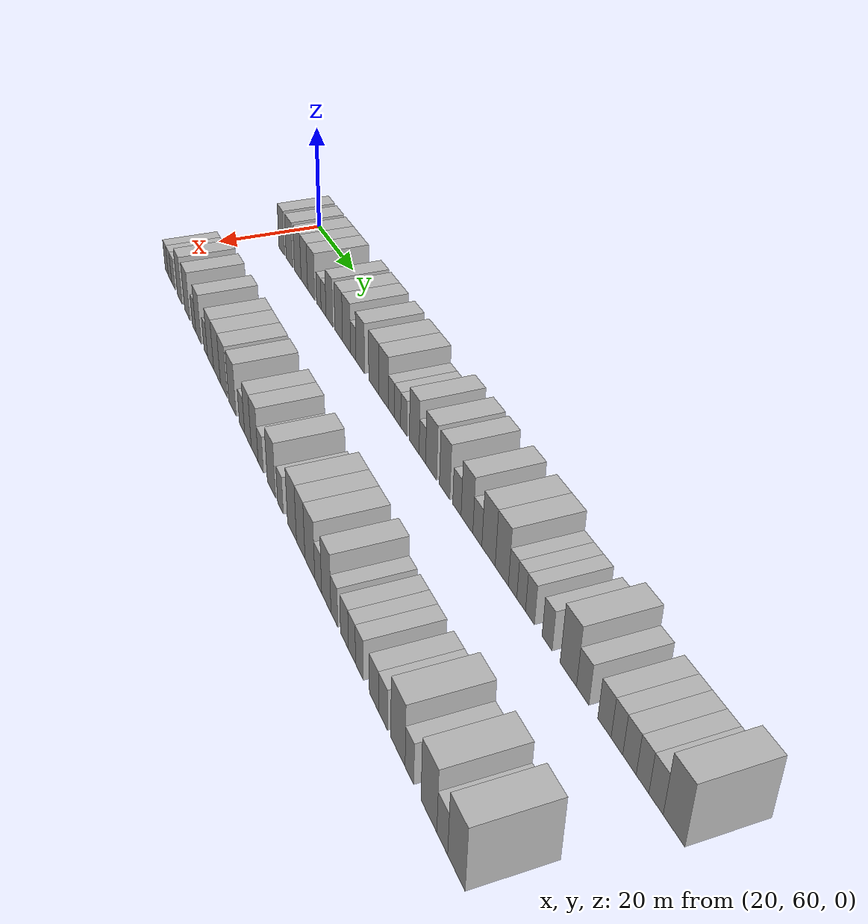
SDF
<sdf version="1.6">
 <world name="default">
  <model name="building_71">
   <static>1</static>
   <pose>25.0000 68.1362 0 0.000000 0.000000 0.000000</pose>
   <link name="link">
    <pose>0 0 4.50 0 0 0</pose>
    <collision name="collision"><geometry><box><size>10.0000 3.7482 9.0000</size></box></geometry></collision>
    <visual name="visual">
     <cast_shadows>0</cast_shadows>
     <geometry><box><size>10.0000 3.7482 9.0000</size></box></geometry>
     <material>
      <script>
       <uri>model://HANNAS_wall/materials/scripts</uri>
       <uri>model://HANNAS_wall/materials/textures</uri>
       <name>vrc/HANNAS_wall</name>
      </script>
     </material>
    </visual>
   </link>
  </model>
  <model name="building_72">
   <static>1</static>
   <pose>25.0000 73.1373 0 0.000000 0.000000 0.000000</pose>
   <link name="link">
    <pose>0 0 4.50 0 0 0</pose>
    <collision name="collision"><geometry><box><size>10.0000 4.2538 9.0000</size></box></geometry></collision>
    <visual name="visual">
     <cast_shadows>0</cast_shadows>
     <geometry><box><size>10.0000 4.2538 9.0000</size></box></geometry>
     <material>
      <script>
       <uri>model://HANNAS_wall/materials/scripts</uri>
       <uri>model://HANNAS_wall/materials/textures</uri>
       <name>vrc/HANNAS_wall</name>
      </script>
     </material>
    </visual>
   </link>
  </model>
  <model name="building_73">
   <static>1</static>
   <pose>25.0000 78.3566 0 0.000000 0.000000 0.000000</pose>
   <link name="link">
    <pose>0 0 4.50 0 0 0</pose>
    <collision name="collision"><geometry><box><size>10.0000 4.1849 9.0000</size></box></geometry></collision>
    <visual name="visual">
     <cast_shadows>0</cast_shadows>
     <geometry><box><size>10.0000 4.1849 9.0000</size></box></geometry>
     <material>
      <script>
       <uri>model://HANNAS_wall/materials/scripts</uri>
       <uri>model://HANNAS_wall/materials/textures</uri>
       <name>vrc/HANNAS_wall</name>
      </script>
     </material>
    </visual>
   </link>
  </model>
  <model name="building_74">
   <static>1</static>
   <pose>25.0000 82.3882 0 0.000000 0.000000 0.000000</pose>
   <link name="link">
    <pose>0 0 4.50 0 0 0</pose>
    <collision name="collision"><geometry><box><size>10.0000 3.8783 9.0000</size></box></geometry></collision>
    <visual name="visual">
     <cast_shadows>0</cast_shadows>
     <geometry><box><size>10.0000 3.8783 9.0000</size></box></geometry>
     <material>
      <script>
       <uri>model://HANNAS_wall/materials/scripts</uri>
       <uri>model://HANNAS_wall/materials/textures</uri>
       <name>vrc/HANNAS_wall</name>
      </script>
     </material>
    </visual>
   </link>
  </model>
  <model name="building_75">
   <static>1</static>
   <pose>25.0000 86.4307 0 0.000000 0.000000 0.000000</pose>
   <link name="link">
    <pose>0 0 4.50 0 0 0</pose>
    <collision name="collision"><geometry><box><size>10.0000 4.2067 9.0000</size></box></geometry></collision>
    <visual name="visual">
     <cast_shadows>0</cast_shadows>
     <geometry><box><size>10.0000 4.2067 9.0000</size></box></geometry>
     <material>
      <script>
       <uri>model://HANNAS_wall/materials/scripts</uri>
       <uri>model://HANNAS_wall/materials/textures</uri>
       <name>vrc/HANNAS_wall</name>
      </script>
     </material>
    </visual>
   </link>
  </model>
  <model name="building_76">
   <static>1</static>
   <pose>25.0000 90.8180 0 0.000000 0.000000 0.000000</pose>
   <link name="link">
    <pose>0 0 3.00 0 0 0</pose>
    <collision name="collision"><geometry><box><size>10.0000 2.5678 6.0000</size></box></geometry></collision>
    <visual name="visual">
     <cast_shadows>0</cast_shadows>
     <geometry><box><size>10.0000 2.5678 6.0000</size></box></geometry>
     <material>
      <script>
       <uri>model://HANNAS_wall/materials/scripts</uri>
       <uri>model://HANNAS_wall/materials/textures</uri>
       <name>vrc/HANNAS_wall</name>
      </script>
     </material>
    </visual>
   </link>
  </model>
  <model name="building_77">
   <static>1</static>
   <pose>25.0000 93.4687 0 0.000000 0.000000 0.000000</pose>
   <link name="link">
    <pose>0 0 3.00 0 0 0</pose>
    <collision name="collision"><geometry><box><size>10.0000 2.7337 6.0000</size></box></geometry></collision>
    <visual name="visual">
     <cast_shadows>0</cast_shadows>
     <geometry><box><size>10.0000 2.7337 6.0000</size></box></geometry>
     <material>
      <script>
       <uri>model://HANNAS_wall/materials/scripts</uri>
       <uri>model://HANNAS_wall/materials/textures</uri>
       <name>vrc/HANNAS_wall</name>
      </script>
     </material>
    </visual>
   </link>
  </model>
  <model name="building_78">
   <static>1</static>
   <pose>25.0000 96.7047 0 0.000000 0.000000 0.000000</pose>
   <link name="link">
    <pose>0 0 4.50 0 0 0</pose>
    <collision name="collision"><geometry><box><size>10.0000 3.7382 9.0000</size></box></geometry></collision>
    <visual name="visual">
     <cast_shadows>0</cast_shadows>
     <geometry><box><size>10.0000 3.7382 9.0000</size></box></geometry>
     <material>
      <script>
       <uri>model://HANNAS_wall/materials/scripts</uri>
       <uri>model://HANNAS_wall/materials/textures</uri>
       <name>vrc/HANNAS_wall</name>
      </script>
     </material>
    </visual>
   </link>
  </model>
  <model name="building_79">
   <static>1</static>
   <pose>25.0000 101.5788 0 0.000000 0.000000 0.000000</pose>
   <link name="link">
    <pose>0 0 4.50 0 0 0</pose>
    <collision name="collision"><geometry><box><size>10.0000 4.0099 9.0000</size></box></geometry></collision>
    <visual name="visual">
     <cast_shadows>0</cast_shadows>
     <geometry><box><size>10.0000 4.0099 9.0000</size></box></geometry>
     <material>
      <script>
       <uri>model://HANNAS_wall/materials/scripts</uri>
       <uri>model://HANNAS_wall/materials/textures</uri>
       <name>vrc/HANNAS_wall</name>
      </script>
     </material>
    </visual>
   </link>
  </model>
  <model name="building_80">
   <static>1</static>
   <pose>25.0000 105.6009 0 0.000000 0.000000 0.000000</pose>
   <link name="link">
    <pose>0 0 4.50 0 0 0</pose>
    <collision name="collision"><geometry><box><size>10.0000 4.0342 9.0000</size></box></geometry></collision>
    <visual name="visual">
     <cast_shadows>0</cast_shadows>
     <geometry><box><size>10.0000 4.0342 9.0000</size></box></geometry>
     <material>
      <script>
       <uri>model://HANNAS_wall/materials/scripts</uri>
       <uri>model://HANNAS_wall/materials/textures</uri>
       <name>vrc/HANNAS_wall</name>
      </script>
     </material>
    </visual>
   </link>
  </model>
  <model name="building_81">
   <static>1</static>
   <pose>25.0000 108.9214 0 0.000000 0.000000 0.000000</pose>
   <link name="link">
    <pose>0 0 3.00 0 0 0</pose>
    <collision name="collision"><geometry><box><size>10.0000 2.6068 6.0000</size></box></geometry></collision>
    <visual name="visual">
     <cast_shadows>0</cast_shadows>
     <geometry><box><size>10.0000 2.6068 6.0000</size></box></geometry>
     <material>
      <script>
       <uri>model://HANNAS_wall/materials/scripts</uri>
       <uri>model://HANNAS_wall/materials/textures</uri>
       <name>vrc/HANNAS_wall</name>
      </script>
     </material>
    </visual>
   </link>
  </model>
  <model name="building_82">
   <static>1</static>
   <pose>25.0000 112.3044 0 0.000000 0.000000 0.000000</pose>
   <link name="link">
    <pose>0 0 4.50 0 0 0</pose>
    <collision name="collision"><geometry><box><size>10.0000 4.1591 9.0000</size></box></geometry></collision>
    <visual name="visual">
     <cast_shadows>0</cast_shadows>
     <geometry><box><size>10.0000 4.1591 9.0000</size></box></geometry>
     <material>
      <script>
       <uri>model://HANNAS_wall/materials/scripts</uri>
       <uri>model://HANNAS_wall/materials/textures</uri>
       <name>vrc/HANNAS_wall</name>
      </script>
     </material>
    </visual>
   </link>
  </model>
  <model name="building_83">
   <static>1</static>
   <pose>25.0000 118.6127 0 0.000000 0.000000 0.000000</pose>
   <link name="link">
    <pose>0 0 4.50 0 0 0</pose>
    <collision name="collision"><geometry><box><size>10.0000 4.4575 9.0000</size></box></geometry></collision>
    <visual name="visual">
     <cast_shadows>0</cast_shadows>
     <geometry><box><size>10.0000 4.4575 9.0000</size></box></geometry>
     <material>
      <script>
       <uri>model://HANNAS_wall/materials/scripts</uri>
       <uri>model://HANNAS_wall/materials/textures</uri>
       <name>vrc/HANNAS_wall</name>
      </script>
     </material>
    </visual>
   </link>
  </model>
  <model name="building_84">
   <static>1</static>
   <pose>25.0000 122.9503 0 0.000000 0.000000 0.000000</pose>
   <link name="link">
    <pose>0 0 4.50 0 0 0</pose>
    <collision name="collision"><geometry><box><size>10.0000 4.2178 9.0000</size></box></geometry></collision>
    <visual name="visual">
     <cast_shadows>0</cast_shadows>
     <geometry><box><size>10.0000 4.2178 9.0000</size></box></geometry>
     <material>
      <script>
       <uri>model://HANNAS_wall/materials/scripts</uri>
       <uri>model://HANNAS_wall/materials/textures</uri>
       <name>vrc/HANNAS_wall</name>
      </script>
     </material>
    </visual>
   </link>
  </model>
  <model name="building_85">
   <static>1</static>
   <pose>25.0000 126.3173 0 0.000000 0.000000 0.000000</pose>
   <link name="link">
    <pose>0 0 3.00 0 0 0</pose>
    <collision name="collision"><geometry><box><size>10.0000 2.5161 6.0000</size></box></geometry></collision>
    <visual name="visual">
     <cast_shadows>0</cast_shadows>
     <geometry><box><size>10.0000 2.5161 6.0000</size></box></geometry>
     <material>
      <script>
       <uri>model://HANNAS_wall/materials/scripts</uri>
       <uri>model://HANNAS_wall/materials/textures</uri>
       <name>vrc/HANNAS_wall</name>
      </script>
     </material>
    </visual>
   </link>
  </model>
  <model name="building_86">
   <static>1</static>
   <pose>25.0000 128.9272 0 0.000000 0.000000 0.000000</pose>
   <link name="link">
    <pose>0 0 3.00 0 0 0</pose>
    <collision name="collision"><geometry><box><size>10.0000 2.7038 6.0000</size></box></geometry></collision>
    <visual name="visual">
     <cast_shadows>0</cast_shadows>
     <geometry><box><size>10.0000 2.7038 6.0000</size></box></geometry>
     <material>
      <script>
       <uri>model://HANNAS_wall/materials/scripts</uri>
       <uri>model://HANNAS_wall/materials/textures</uri>
       <name>vrc/HANNAS_wall</name>
      </script>
     </material>
    </visual>
   </link>
  </model>
  <model name="building_87">
   <static>1</static>
   <pose>25.0000 131.5506 0 0.000000 0.000000 0.000000</pose>
   <link name="link">
    <pose>0 0 3.00 0 0 0</pose>
    <collision name="collision"><geometry><box><size>10.0000 2.5429 6.0000</size></box></geometry></collision>
    <visual name="visual">
     <cast_shadows>0</cast_shadows>
     <geometry><box><size>10.0000 2.5429 6.0000</size></box></geometry>
     <material>
      <script>
       <uri>model://HANNAS_wall/materials/scripts</uri>
       <uri>model://HANNAS_wall/materials/textures</uri>
       <name>vrc/HANNAS_wall</name>
      </script>
     </material>
    </visual>
   </link>
  </model>
  <model name="building_88">
   <static>1</static>
   <pose>25.0000 135.7260 0 0.000000 0.000000 0.000000</pose>
   <link name="link">
    <pose>0 0 4.50 0 0 0</pose>
    <collision name="collision"><geometry><box><size>10.0000 3.8080 9.0000</size></box></geometry></collision>
    <visual name="visual">
     <cast_shadows>0</cast_shadows>
     <geometry><box><size>10.0000 3.8080 9.0000</size></box></geometry>
     <material>
      <script>
       <uri>model://HANNAS_wall/materials/scripts</uri>
       <uri>model://HANNAS_wall/materials/textures</uri>
       <name>vrc/HANNAS_wall</name>
      </script>
     </material>
    </visual>
   </link>
  </model>
  <model name="building_89">
   <static>1</static>
   <pose>25.0000 138.8651 0 0.000000 0.000000 0.000000</pose>
   <link name="link">
    <pose>0 0 3.00 0 0 0</pose>
    <collision name="collision"><geometry><box><size>10.0000 2.4701 6.0000</size></box></geometry></collision>
    <visual name="visual">
     <cast_shadows>0</cast_shadows>
     <geometry><box><size>10.0000 2.4701 6.0000</size></box></geometry>
     <material>
      <script>
       <uri>model://HANNAS_wall/materials/scripts</uri>
       <uri>model://HANNAS_wall/materials/textures</uri>
       <name>vrc/HANNAS_wall</name>
      </script>
     </material>
    </visual>
   </link>
  </model>
  <model name="building_90">
   <static>1</static>
   <pose>25.0000 142.1381 0 0.000000 0.000000 0.000000</pose>
   <link name="link">
    <pose>0 0 4.50 0 0 0</pose>
    <collision name="collision"><geometry><box><size>10.0000 4.0758 9.0000</size></box></geometry></collision>
    <visual name="visual">
     <cast_shadows>0</cast_shadows>
     <geometry><box><size>10.0000 4.0758 9.0000</size></box></geometry>
     <material>
      <script>
       <uri>model://HANNAS_wall/materials/scripts</uri>
       <uri>model://HANNAS_wall/materials/textures</uri>
       <name>vrc/HANNAS_wall</name>
      </script>
     </material>
    </visual>
   </link>
  </model>
  <model name="building_91">
   <static>1</static>
   <pose>25.0000 147.0210 0 0.000000 0.000000 0.000000</pose>
   <link name="link">
    <pose>0 0 4.50 0 0 0</pose>
    <collision name="collision"><geometry><box><size>10.0000 3.6899 9.0000</size></box></geometry></collision>
    <visual name="visual">
     <cast_shadows>0</cast_shadows>
     <geometry><box><size>10.0000 3.6899 9.0000</size></box></geometry>
     <material>
      <script>
       <uri>model://HANNAS_wall/materials/scripts</uri>
       <uri>model://HANNAS_wall/materials/textures</uri>
       <name>vrc/HANNAS_wall</name>
      </script>
     </material>
    </visual>
   </link>
  </model>
  <model name="building_92">
   <static>1</static>
   <pose>25.0000 151.2748 0 0.000000 0.000000 0.000000</pose>
   <link name="link">
    <pose>0 0 3.00 0 0 0</pose>
    <collision name="collision"><geometry><box><size>10.0000 2.8178 6.0000</size></box></geometry></collision>
    <visual name="visual">
     <cast_shadows>0</cast_shadows>
     <geometry><box><size>10.0000 2.8178 6.0000</size></box></geometry>
     <material>
      <script>
       <uri>model://HANNAS_wall/materials/scripts</uri>
       <uri>model://HANNAS_wall/materials/textures</uri>
       <name>vrc/HANNAS_wall</name>
      </script>
     </material>
    </visual>
   </link>
  </model>
  <model name="building_93">
   <static>1</static>
   <pose>25.0000 154.6164 0 0.000000 0.000000 0.000000</pose>
   <link name="link">
    <pose>0 0 4.50 0 0 0</pose>
    <collision name="collision"><geometry><box><size>10.0000 3.8654 9.0000</size></box></geometry></collision>
    <visual name="visual">
     <cast_shadows>0</cast_shadows>
     <geometry><box><size>10.0000 3.8654 9.0000</size></box></geometry>
     <material>
      <script>
       <uri>model://HANNAS_wall/materials/scripts</uri>
       <uri>model://HANNAS_wall/materials/textures</uri>
       <name>vrc/HANNAS_wall</name>
      </script>
     </material>
    </visual>
   </link>
  </model>
  <model name="building_94">
   <static>1</static>
   <pose>25.0000 157.9783 0 0.000000 0.000000 0.000000</pose>
   <link name="link">
    <pose>0 0 3.00 0 0 0</pose>
    <collision name="collision"><geometry><box><size>10.0000 2.8585 6.0000</size></box></geometry></collision>
    <visual name="visual">
     <cast_shadows>0</cast_shadows>
     <geometry><box><size>10.0000 2.8585 6.0000</size></box></geometry>
     <material>
      <script>
       <uri>model://HANNAS_wall/materials/scripts</uri>
       <uri>model://HANNAS_wall/materials/textures</uri>
       <name>vrc/HANNAS_wall</name>
      </script>
     </material>
    </visual>
   </link>
  </model>
  <model name="building_95">
   <static>1</static>
   <pose>25.0000 161.4505 0 0.000000 0.000000 0.000000</pose>
   <link name="link">
    <pose>0 0 4.50 0 0 0</pose>
    <collision name="collision"><geometry><box><size>10.0000 4.0859 9.0000</size></box></geometry></collision>
    <visual name="visual">
     <cast_shadows>0</cast_shadows>
     <geometry><box><size>10.0000 4.0859 9.0000</size></box></geometry>
     <material>
      <script>
       <uri>model://HANNAS_wall/materials/scripts</uri>
       <uri>model://HANNAS_wall/materials/textures</uri>
       <name>vrc/HANNAS_wall</name>
      </script>
     </material>
    </visual>
   </link>
  </model>
  <model name="building_96">
   <static>1</static>
   <pose>25.0000 165.4312 0 0.000000 0.000000 0.000000</pose>
   <link name="link">
    <pose>0 0 4.50 0 0 0</pose>
    <collision name="collision"><geometry><box><size>10.0000 3.8757 9.0000</size></box></geometry></collision>
    <visual name="visual">
     <cast_shadows>0</cast_shadows>
     <geometry><box><size>10.0000 3.8757 9.0000</size></box></geometry>
     <material>
      <script>
       <uri>model://HANNAS_wall/materials/scripts</uri>
       <uri>model://HANNAS_wall/materials/textures</uri>
       <name>vrc/HANNAS_wall</name>
      </script>
     </material>
    </visual>
   </link>
  </model>
  <model name="building_97">
   <static>1</static>
   <pose>25.0000 168.5709 0 0.000000 0.000000 0.000000</pose>
   <link name="link">
    <pose>0 0 3.00 0 0 0</pose>
    <collision name="collision"><geometry><box><size>10.0000 2.4036 6.0000</size></box></geometry></collision>
    <visual name="visual">
     <cast_shadows>0</cast_shadows>
     <geometry><box><size>10.0000 2.4036 6.0000</size></box></geometry>
     <material>
      <script>
       <uri>model://HANNAS_wall/materials/scripts</uri>
       <uri>model://HANNAS_wall/materials/textures</uri>
       <name>vrc/HANNAS_wall</name>
      </script>
     </material>
    </visual>
   </link>
  </model>
  <model name="building_98">
   <static>1</static>
   <pose>25.0000 170.9835 0 0.000000 0.000000 0.000000</pose>
   <link name="link">
    <pose>0 0 3.00 0 0 0</pose>
    <collision name="collision"><geometry><box><size>10.0000 2.4217 6.0000</size></box></geometry></collision>
    <visual name="visual">
     <cast_shadows>0</cast_shadows>
     <geometry><box><size>10.0000 2.4217 6.0000</size></box></geometry>
     <material>
      <script>
       <uri>model://HANNAS_wall/materials/scripts</uri>
       <uri>model://HANNAS_wall/materials/textures</uri>
       <name>vrc/HANNAS_wall</name>
      </script>
     </material>
    </visual>
   </link>
  </model>
  <model name="building_99">
   <static>1</static>
   <pose>25.0000 173.4067 0 0.000000 0.000000 0.000000</pose>
   <link name="link">
    <pose>0 0 3.00 0 0 0</pose>
    <collision name="collision"><geometry><box><size>10.0000 2.4247 6.0000</size></box></geometry></collision>
    <visual name="visual">
     <cast_shadows>0</cast_shadows>
     <geometry><box><size>10.0000 2.4247 6.0000</size></box></geometry>
     <material>
      <script>
       <uri>model://HANNAS_wall/materials/scripts</uri>
       <uri>model://HANNAS_wall/materials/textures</uri>
       <name>vrc/HANNAS_wall</name>
      </script>
     </material>
    </visual>
   </link>
  </model>
  <model name="building_100">
   <static>1</static>
   <pose>25.0000 177.9200 0 0.000000 0.000000 0.000000</pose>
   <link name="link">
    <pose>0 0 3.00 0 0 0</pose>
    <collision name="collision"><geometry><box><size>10.0000 2.6019 6.0000</size></box></geometry></collision>
    <visual name="visual">
     <cast_shadows>0</cast_shadows>
     <geometry><box><size>10.0000 2.6019 6.0000</size></box></geometry>
     <material>
      <script>
       <uri>model://HANNAS_wall/materials/scripts</uri>
       <uri>model://HANNAS_wall/materials/textures</uri>
       <name>vrc/HANNAS_wall</name>
      </script>
     </material>
    </visual>
   </link>
  </model>
  <model name="building_101">
   <static>1</static>
   <pose>25.0000 183.2006 0 0.000000 0.000000 0.000000</pose>
   <link name="link">
    <pose>0 0 4.50 0 0 0</pose>
    <collision name="collision"><geometry><box><size>10.0000 3.9595 9.0000</size></box></geometry></collision>
    <visual name="visual">
     <cast_shadows>0</cast_shadows>
     <geometry><box><size>10.0000 3.9595 9.0000</size></box></geometry>
     <material>
      <script>
       <uri>model://HANNAS_wall/materials/scripts</uri>
       <uri>model://HANNAS_wall/materials/textures</uri>
       <name>vrc/HANNAS_wall</name>
      </script>
     </material>
    </visual>
   </link>
  </model>
  <model name="building_102">
   <static>1</static>
   <pose>25.0000 186.6305 0 0.000000 0.000000 0.000000</pose>
   <link name="link">
    <pose>0 0 3.00 0 0 0</pose>
    <collision name="collision"><geometry><box><size>10.0000 2.9003 6.0000</size></box></geometry></collision>
    <visual name="visual">
     <cast_shadows>0</cast_shadows>
     <geometry><box><size>10.0000 2.9003 6.0000</size></box></geometry>
     <material>
      <script>
       <uri>model://HANNAS_wall/materials/scripts</uri>
       <uri>model://HANNAS_wall/materials/textures</uri>
       <name>vrc/HANNAS_wall</name>
      </script>
     </material>
    </visual>
   </link>
  </model>
  <model name="building_103">
   <static>1</static>
   <pose>25.0000 191.5442 0 0.000000 0.000000 0.000000</pose>
   <link name="link">
    <pose>0 0 3.00 0 0 0</pose>
    <collision name="collision"><geometry><box><size>10.0000 2.9269 6.0000</size></box></geometry></collision>
    <visual name="visual">
     <cast_shadows>0</cast_shadows>
     <geometry><box><size>10.0000 2.9269 6.0000</size></box></geometry>
     <material>
      <script>
       <uri>model://HANNAS_wall/materials/scripts</uri>
       <uri>model://HANNAS_wall/materials/textures</uri>
       <name>vrc/HANNAS_wall</name>
      </script>
     </material>
    </visual>
   </link>
  </model>
  <model name="building_104">
   <static>1</static>
   <pose>25.0000 194.2421 0 0.000000 0.000000 0.000000</pose>
   <link name="link">
    <pose>0 0 3.00 0 0 0</pose>
    <collision name="collision"><geometry><box><size>10.0000 2.4690 6.0000</size></box></geometry></collision>
    <visual name="visual">
     <cast_shadows>0</cast_shadows>
     <geometry><box><size>10.0000 2.4690 6.0000</size></box></geometry>
     <material>
      <script>
       <uri>model://HANNAS_wall/materials/scripts</uri>
       <uri>model://HANNAS_wall/materials/textures</uri>
       <name>vrc/HANNAS_wall</name>
      </script>
     </material>
    </visual>
   </link>
  </model>
  <model name="building_105">
   <static>1</static>
   <pose>25.0000 196.8611 0 0.000000 0.000000 0.000000</pose>
   <link name="link">
    <pose>0 0 3.00 0 0 0</pose>
    <collision name="collision"><geometry><box><size>10.0000 2.7690 6.0000</size></box></geometry></collision>
    <visual name="visual">
     <cast_shadows>0</cast_shadows>
     <geometry><box><size>10.0000 2.7690 6.0000</size></box></geometry>
     <material>
      <script>
       <uri>model://HANNAS_wall/materials/scripts</uri>
       <uri>model://HANNAS_wall/materials/textures</uri>
       <name>vrc/HANNAS_wall</name>
      </script>
     </material>
    </visual>
   </link>
  </model>
  <model name="building_106">
   <static>1</static>
   <pose>25.0000 199.5034 0 0.000000 0.000000 0.000000</pose>
   <link name="link">
    <pose>0 0 3.00 0 0 0</pose>
    <collision name="collision"><geometry><box><size>10.0000 2.5157 6.0000</size></box></geometry></collision>
    <visual name="visual">
     <cast_shadows>0</cast_shadows>
     <geometry><box><size>10.0000 2.5157 6.0000</size></box></geometry>
     <material>
      <script>
       <uri>model://HANNAS_wall/materials/scripts</uri>
       <uri>model://HANNAS_wall/materials/textures</uri>
       <name>vrc/HANNAS_wall</name>
      </script>
     </material>
    </visual>
   </link>
  </model>
  <model name="building_107">
   <static>1</static>
   <pose>25.0000 202.1481 0 0.000000 0.000000 0.000000</pose>
   <link name="link">
    <pose>0 0 3.00 0 0 0</pose>
    <collision name="collision"><geometry><box><size>10.0000 2.7737 6.0000</size></box></geometry></collision>
    <visual name="visual">
     <cast_shadows>0</cast_shadows>
     <geometry><box><size>10.0000 2.7737 6.0000</size></box></geometry>
     <material>
      <script>
       <uri>model://HANNAS_wall/materials/scripts</uri>
       <uri>model://HANNAS_wall/materials/textures</uri>
       <name>vrc/HANNAS_wall</name>
      </script>
     </material>
    </visual>
   </link>
  </model>
  <model name="building_108">
   <static>1</static>
   <pose>25.0000 205.5388 0 0.000000 0.000000 0.000000</pose>
   <link name="link">
    <pose>0 0 4.50 0 0 0</pose>
    <collision name="collision"><geometry><box><size>10.0000 4.0077 9.0000</size></box></geometry></collision>
    <visual name="visual">
     <cast_shadows>0</cast_shadows>
     <geometry><box><size>10.0000 4.0077 9.0000</size></box></geometry>
     <material>
      <script>
       <uri>model://HANNAS_wall/materials/scripts</uri>
       <uri>model://HANNAS_wall/materials/textures</uri>
       <name>vrc/HANNAS_wall</name>
      </script>
     </material>
    </visual>
   </link>
  </model>
  <model name="building_182">
   <static>1</static>
   <pose>47.0000 69.2592 0 0.000000 0.000000 0.000000</pose>
   <link name="link">
    <pose>0 0 3.00 0 0 0</pose>
    <collision name="collision"><geometry><box><size>10.0000 2.5561 6.0000</size></box></geometry></collision>
    <visual name="visual">
     <cast_shadows>0</cast_shadows>
     <geometry><box><size>10.0000 2.5561 6.0000</size></box></geometry>
     <material>
      <script>
       <uri>model://HANNAS_wall/materials/scripts</uri>
       <uri>model://HANNAS_wall/materials/textures</uri>
       <name>vrc/HANNAS_wall</name>
      </script>
     </material>
    </visual>
   </link>
  </model>
  <model name="building_183">
   <static>1</static>
   <pose>47.0000 71.9799 0 0.000000 0.000000 0.000000</pose>
   <link name="link">
    <pose>0 0 3.00 0 0 0</pose>
    <collision name="collision"><geometry><box><size>10.0000 2.8853 6.0000</size></box></geometry></collision>
    <visual name="visual">
     <cast_shadows>0</cast_shadows>
     <geometry><box><size>10.0000 2.8853 6.0000</size></box></geometry>
     <material>
      <script>
       <uri>model://HANNAS_wall/materials/scripts</uri>
       <uri>model://HANNAS_wall/materials/textures</uri>
       <name>vrc/HANNAS_wall</name>
      </script>
     </material>
    </visual>
   </link>
  </model>
  <model name="building_184">
   <static>1</static>
   <pose>47.0000 74.8629 0 0.000000 0.000000 0.000000</pose>
   <link name="link">
    <pose>0 0 3.00 0 0 0</pose>
    <collision name="collision"><geometry><box><size>10.0000 2.8807 6.0000</size></box></geometry></collision>
    <visual name="visual">
     <cast_shadows>0</cast_shadows>
     <geometry><box><size>10.0000 2.8807 6.0000</size></box></geometry>
     <material>
      <script>
       <uri>model://HANNAS_wall/materials/scripts</uri>
       <uri>model://HANNAS_wall/materials/textures</uri>
       <name>vrc/HANNAS_wall</name>
      </script>
     </material>
    </visual>
   </link>
  </model>
  <model name="building_185">
   <static>1</static>
   <pose>47.0000 80.1824 0 0.000000 0.000000 0.000000</pose>
   <link name="link">
    <pose>0 0 4.50 0 0 0</pose>
    <collision name="collision"><geometry><box><size>10.0000 3.7584 9.0000</size></box></geometry></collision>
    <visual name="visual">
     <cast_shadows>0</cast_shadows>
     <geometry><box><size>10.0000 3.7584 9.0000</size></box></geometry>
     <material>
      <script>
       <uri>model://HANNAS_wall/materials/scripts</uri>
       <uri>model://HANNAS_wall/materials/textures</uri>
       <name>vrc/HANNAS_wall</name>
      </script>
     </material>
    </visual>
   </link>
  </model>
  <model name="building_186">
   <static>1</static>
   <pose>47.0000 86.1048 0 0.000000 0.000000 0.000000</pose>
   <link name="link">
    <pose>0 0 4.50 0 0 0</pose>
    <collision name="collision"><geometry><box><size>10.0000 4.0863 9.0000</size></box></geometry></collision>
    <visual name="visual">
     <cast_shadows>0</cast_shadows>
     <geometry><box><size>10.0000 4.0863 9.0000</size></box></geometry>
     <material>
      <script>
       <uri>model://HANNAS_wall/materials/scripts</uri>
       <uri>model://HANNAS_wall/materials/textures</uri>
       <name>vrc/HANNAS_wall</name>
      </script>
     </material>
    </visual>
   </link>
  </model>
  <model name="building_187">
   <static>1</static>
   <pose>47.0000 91.3722 0 0.000000 0.000000 0.000000</pose>
   <link name="link">
    <pose>0 0 3.00 0 0 0</pose>
    <collision name="collision"><geometry><box><size>10.0000 2.4486 6.0000</size></box></geometry></collision>
    <visual name="visual">
     <cast_shadows>0</cast_shadows>
     <geometry><box><size>10.0000 2.4486 6.0000</size></box></geometry>
     <material>
      <script>
       <uri>model://HANNAS_wall/materials/scripts</uri>
       <uri>model://HANNAS_wall/materials/textures</uri>
       <name>vrc/HANNAS_wall</name>
      </script>
     </material>
    </visual>
   </link>
  </model>
  <model name="building_188">
   <static>1</static>
   <pose>47.0000 94.5547 0 0.000000 0.000000 0.000000</pose>
   <link name="link">
    <pose>0 0 4.50 0 0 0</pose>
    <collision name="collision"><geometry><box><size>10.0000 3.9163 9.0000</size></box></geometry></collision>
    <visual name="visual">
     <cast_shadows>0</cast_shadows>
     <geometry><box><size>10.0000 3.9163 9.0000</size></box></geometry>
     <material>
      <script>
       <uri>model://HANNAS_wall/materials/scripts</uri>
       <uri>model://HANNAS_wall/materials/textures</uri>
       <name>vrc/HANNAS_wall</name>
      </script>
     </material>
    </visual>
   </link>
  </model>
  <model name="building_189">
   <static>1</static>
   <pose>47.0000 99.7433 0 0.000000 0.000000 0.000000</pose>
   <link name="link">
    <pose>0 0 3.00 0 0 0</pose>
    <collision name="collision"><geometry><box><size>10.0000 2.4610 6.0000</size></box></geometry></collision>
    <visual name="visual">
     <cast_shadows>0</cast_shadows>
     <geometry><box><size>10.0000 2.4610 6.0000</size></box></geometry>
     <material>
      <script>
       <uri>model://HANNAS_wall/materials/scripts</uri>
       <uri>model://HANNAS_wall/materials/textures</uri>
       <name>vrc/HANNAS_wall</name>
      </script>
     </material>
    </visual>
   </link>
  </model>
  <model name="building_190">
   <static>1</static>
   <pose>47.0000 103.0327 0 0.000000 0.000000 0.000000</pose>
   <link name="link">
    <pose>0 0 4.50 0 0 0</pose>
    <collision name="collision"><geometry><box><size>10.0000 4.1178 9.0000</size></box></geometry></collision>
    <visual name="visual">
     <cast_shadows>0</cast_shadows>
     <geometry><box><size>10.0000 4.1178 9.0000</size></box></geometry>
     <material>
      <script>
       <uri>model://HANNAS_wall/materials/scripts</uri>
       <uri>model://HANNAS_wall/materials/textures</uri>
       <name>vrc/HANNAS_wall</name>
      </script>
     </material>
    </visual>
   </link>
  </model>
  <model name="building_191">
   <static>1</static>
   <pose>47.0000 107.3072 0 0.000000 0.000000 0.000000</pose>
   <link name="link">
    <pose>0 0 4.50 0 0 0</pose>
    <collision name="collision"><geometry><box><size>10.0000 4.4312 9.0000</size></box></geometry></collision>
    <visual name="visual">
     <cast_shadows>0</cast_shadows>
     <geometry><box><size>10.0000 4.4312 9.0000</size></box></geometry>
     <material>
      <script>
       <uri>model://HANNAS_wall/materials/scripts</uri>
       <uri>model://HANNAS_wall/materials/textures</uri>
       <name>vrc/HANNAS_wall</name>
      </script>
     </material>
    </visual>
   </link>
  </model>
  <model name="building_192">
   <static>1</static>
   <pose>47.0000 111.6760 0 0.000000 0.000000 0.000000</pose>
   <link name="link">
    <pose>0 0 4.50 0 0 0</pose>
    <collision name="collision"><geometry><box><size>10.0000 4.3065 9.0000</size></box></geometry></collision>
    <visual name="visual">
     <cast_shadows>0</cast_shadows>
     <geometry><box><size>10.0000 4.3065 9.0000</size></box></geometry>
     <material>
      <script>
       <uri>model://HANNAS_wall/materials/scripts</uri>
       <uri>model://HANNAS_wall/materials/textures</uri>
       <name>vrc/HANNAS_wall</name>
      </script>
     </material>
    </visual>
   </link>
  </model>
  <model name="building_193">
   <static>1</static>
   <pose>47.0000 117.0173 0 0.000000 0.000000 0.000000</pose>
   <link name="link">
    <pose>0 0 4.50 0 0 0</pose>
    <collision name="collision"><geometry><box><size>10.0000 4.3759 9.0000</size></box></geometry></collision>
    <visual name="visual">
     <cast_shadows>0</cast_shadows>
     <geometry><box><size>10.0000 4.3759 9.0000</size></box></geometry>
     <material>
      <script>
       <uri>model://HANNAS_wall/materials/scripts</uri>
       <uri>model://HANNAS_wall/materials/textures</uri>
       <name>vrc/HANNAS_wall</name>
      </script>
     </material>
    </visual>
   </link>
  </model>
  <model name="building_194">
   <static>1</static>
   <pose>47.0000 122.6845 0 0.000000 0.000000 0.000000</pose>
   <link name="link">
    <pose>0 0 3.00 0 0 0</pose>
    <collision name="collision"><geometry><box><size>10.0000 2.9584 6.0000</size></box></geometry></collision>
    <visual name="visual">
     <cast_shadows>0</cast_shadows>
     <geometry><box><size>10.0000 2.9584 6.0000</size></box></geometry>
     <material>
      <script>
       <uri>model://HANNAS_wall/materials/scripts</uri>
       <uri>model://HANNAS_wall/materials/textures</uri>
       <name>vrc/HANNAS_wall</name>
      </script>
     </material>
    </visual>
   </link>
  </model>
  <model name="building_195">
   <static>1</static>
   <pose>47.0000 126.0181 0 0.000000 0.000000 0.000000</pose>
   <link name="link">
    <pose>0 0 4.50 0 0 0</pose>
    <collision name="collision"><geometry><box><size>10.0000 3.7088 9.0000</size></box></geometry></collision>
    <visual name="visual">
     <cast_shadows>0</cast_shadows>
     <geometry><box><size>10.0000 3.7088 9.0000</size></box></geometry>
     <material>
      <script>
       <uri>model://HANNAS_wall/materials/scripts</uri>
       <uri>model://HANNAS_wall/materials/textures</uri>
       <name>vrc/HANNAS_wall</name>
      </script>
     </material>
    </visual>
   </link>
  </model>
  <model name="building_196">
   <static>1</static>
   <pose>47.0000 129.7366 0 0.000000 0.000000 0.000000</pose>
   <link name="link">
    <pose>0 0 4.50 0 0 0</pose>
    <collision name="collision"><geometry><box><size>10.0000 3.7282 9.0000</size></box></geometry></collision>
    <visual name="visual">
     <cast_shadows>0</cast_shadows>
     <geometry><box><size>10.0000 3.7282 9.0000</size></box></geometry>
     <material>
      <script>
       <uri>model://HANNAS_wall/materials/scripts</uri>
       <uri>model://HANNAS_wall/materials/textures</uri>
       <name>vrc/HANNAS_wall</name>
      </script>
     </material>
    </visual>
   </link>
  </model>
  <model name="building_197">
   <static>1</static>
   <pose>47.0000 132.9669 0 0.000000 0.000000 0.000000</pose>
   <link name="link">
    <pose>0 0 3.00 0 0 0</pose>
    <collision name="collision"><geometry><box><size>10.0000 2.7323 6.0000</size></box></geometry></collision>
    <visual name="visual">
     <cast_shadows>0</cast_shadows>
     <geometry><box><size>10.0000 2.7323 6.0000</size></box></geometry>
     <material>
      <script>
       <uri>model://HANNAS_wall/materials/scripts</uri>
       <uri>model://HANNAS_wall/materials/textures</uri>
       <name>vrc/HANNAS_wall</name>
      </script>
     </material>
    </visual>
   </link>
  </model>
  <model name="building_198">
   <static>1</static>
   <pose>47.0000 138.3932 0 0.000000 0.000000 0.000000</pose>
   <link name="link">
    <pose>0 0 4.50 0 0 0</pose>
    <collision name="collision"><geometry><box><size>10.0000 4.1204 9.0000</size></box></geometry></collision>
    <visual name="visual">
     <cast_shadows>0</cast_shadows>
     <geometry><box><size>10.0000 4.1204 9.0000</size></box></geometry>
     <material>
      <script>
       <uri>model://HANNAS_wall/materials/scripts</uri>
       <uri>model://HANNAS_wall/materials/textures</uri>
       <name>vrc/HANNAS_wall</name>
      </script>
     </material>
    </visual>
   </link>
  </model>
  <model name="building_199">
   <static>1</static>
   <pose>47.0000 142.8062 0 0.000000 0.000000 0.000000</pose>
   <link name="link">
    <pose>0 0 3.00 0 0 0</pose>
    <collision name="collision"><geometry><box><size>10.0000 2.7056 6.0000</size></box></geometry></collision>
    <visual name="visual">
     <cast_shadows>0</cast_shadows>
     <geometry><box><size>10.0000 2.7056 6.0000</size></box></geometry>
     <material>
      <script>
       <uri>model://HANNAS_wall/materials/scripts</uri>
       <uri>model://HANNAS_wall/materials/textures</uri>
       <name>vrc/HANNAS_wall</name>
      </script>
     </material>
    </visual>
   </link>
  </model>
  <model name="building_200">
   <static>1</static>
   <pose>47.0000 148.1753 0 0.000000 0.000000 0.000000</pose>
   <link name="link">
    <pose>0 0 4.50 0 0 0</pose>
    <collision name="collision"><geometry><box><size>10.0000 4.0325 9.0000</size></box></geometry></collision>
    <visual name="visual">
     <cast_shadows>0</cast_shadows>
     <geometry><box><size>10.0000 4.0325 9.0000</size></box></geometry>
     <material>
      <script>
       <uri>model://HANNAS_wall/materials/scripts</uri>
       <uri>model://HANNAS_wall/materials/textures</uri>
       <name>vrc/HANNAS_wall</name>
      </script>
     </material>
    </visual>
   </link>
  </model>
  <model name="building_201">
   <static>1</static>
   <pose>47.0000 152.0505 0 0.000000 0.000000 0.000000</pose>
   <link name="link">
    <pose>0 0 4.50 0 0 0</pose>
    <collision name="collision"><geometry><box><size>10.0000 3.7180 9.0000</size></box></geometry></collision>
    <visual name="visual">
     <cast_shadows>0</cast_shadows>
     <geometry><box><size>10.0000 3.7180 9.0000</size></box></geometry>
     <material>
      <script>
       <uri>model://HANNAS_wall/materials/scripts</uri>
       <uri>model://HANNAS_wall/materials/textures</uri>
       <name>vrc/HANNAS_wall</name>
      </script>
     </material>
    </visual>
   </link>
  </model>
  <model name="building_202">
   <static>1</static>
   <pose>47.0000 155.9677 0 0.000000 0.000000 0.000000</pose>
   <link name="link">
    <pose>0 0 4.50 0 0 0</pose>
    <collision name="collision"><geometry><box><size>10.0000 4.1163 9.0000</size></box></geometry></collision>
    <visual name="visual">
     <cast_shadows>0</cast_shadows>
     <geometry><box><size>10.0000 4.1163 9.0000</size></box></geometry>
     <material>
      <script>
       <uri>model://HANNAS_wall/materials/scripts</uri>
       <uri>model://HANNAS_wall/materials/textures</uri>
       <name>vrc/HANNAS_wall</name>
      </script>
     </material>
    </visual>
   </link>
  </model>
  <model name="building_203">
   <static>1</static>
   <pose>47.0000 159.4070 0 0.000000 0.000000 0.000000</pose>
   <link name="link">
    <pose>0 0 3.00 0 0 0</pose>
    <collision name="collision"><geometry><box><size>10.0000 2.7623 6.0000</size></box></geometry></collision>
    <visual name="visual">
     <cast_shadows>0</cast_shadows>
     <geometry><box><size>10.0000 2.7623 6.0000</size></box></geometry>
     <material>
      <script>
       <uri>model://HANNAS_wall/materials/scripts</uri>
       <uri>model://HANNAS_wall/materials/textures</uri>
       <name>vrc/HANNAS_wall</name>
      </script>
     </material>
    </visual>
   </link>
  </model>
  <model name="building_204">
   <static>1</static>
   <pose>47.0000 162.6042 0 0.000000 0.000000 0.000000</pose>
   <link name="link">
    <pose>0 0 4.50 0 0 0</pose>
    <collision name="collision"><geometry><box><size>10.0000 3.6320 9.0000</size></box></geometry></collision>
    <visual name="visual">
     <cast_shadows>0</cast_shadows>
     <geometry><box><size>10.0000 3.6320 9.0000</size></box></geometry>
     <material>
      <script>
       <uri>model://HANNAS_wall/materials/scripts</uri>
       <uri>model://HANNAS_wall/materials/textures</uri>
       <name>vrc/HANNAS_wall</name>
      </script>
     </material>
    </visual>
   </link>
  </model>
  <model name="building_205">
   <static>1</static>
   <pose>47.0000 165.7108 0 0.000000 0.000000 0.000000</pose>
   <link name="link">
    <pose>0 0 3.00 0 0 0</pose>
    <collision name="collision"><geometry><box><size>10.0000 2.5812 6.0000</size></box></geometry></collision>
    <visual name="visual">
     <cast_shadows>0</cast_shadows>
     <geometry><box><size>10.0000 2.5812 6.0000</size></box></geometry>
     <material>
      <script>
       <uri>model://HANNAS_wall/materials/scripts</uri>
       <uri>model://HANNAS_wall/materials/textures</uri>
       <name>vrc/HANNAS_wall</name>
      </script>
     </material>
    </visual>
   </link>
  </model>
  <model name="building_206">
   <static>1</static>
   <pose>47.0000 169.4310 0 0.000000 0.000000 0.000000</pose>
   <link name="link">
    <pose>0 0 3.00 0 0 0</pose>
    <collision name="collision"><geometry><box><size>10.0000 2.8592 6.0000</size></box></geometry></collision>
    <visual name="visual">
     <cast_shadows>0</cast_shadows>
     <geometry><box><size>10.0000 2.8592 6.0000</size></box></geometry>
     <material>
      <script>
       <uri>model://HANNAS_wall/materials/scripts</uri>
       <uri>model://HANNAS_wall/materials/textures</uri>
       <name>vrc/HANNAS_wall</name>
      </script>
     </material>
    </visual>
   </link>
  </model>
  <model name="building_207">
   <static>1</static>
   <pose>47.0000 172.1164 0 0.000000 0.000000 0.000000</pose>
   <link name="link">
    <pose>0 0 3.00 0 0 0</pose>
    <collision name="collision"><geometry><box><size>10.0000 2.5115 6.0000</size></box></geometry></collision>
    <visual name="visual">
     <cast_shadows>0</cast_shadows>
     <geometry><box><size>10.0000 2.5115 6.0000</size></box></geometry>
     <material>
      <script>
       <uri>model://HANNAS_wall/materials/scripts</uri>
       <uri>model://HANNAS_wall/materials/textures</uri>
       <name>vrc/HANNAS_wall</name>
      </script>
     </material>
    </visual>
   </link>
  </model>
  <model name="building_208">
   <static>1</static>
   <pose>47.0000 174.7204 0 0.000000 0.000000 0.000000</pose>
   <link name="link">
    <pose>0 0 3.00 0 0 0</pose>
    <collision name="collision"><geometry><box><size>10.0000 2.6966 6.0000</size></box></geometry></collision>
    <visual name="visual">
     <cast_shadows>0</cast_shadows>
     <geometry><box><size>10.0000 2.6966 6.0000</size></box></geometry>
     <material>
      <script>
       <uri>model://HANNAS_wall/materials/scripts</uri>
       <uri>model://HANNAS_wall/materials/textures</uri>
       <name>vrc/HANNAS_wall</name>
      </script>
     </material>
    </visual>
   </link>
  </model>
  <model name="building_209">
   <static>1</static>
   <pose>47.0000 179.5239 0 0.000000 0.000000 0.000000</pose>
   <link name="link">
    <pose>0 0 3.00 0 0 0</pose>
    <collision name="collision"><geometry><box><size>10.0000 2.9105 6.0000</size></box></geometry></collision>
    <visual name="visual">
     <cast_shadows>0</cast_shadows>
     <geometry><box><size>10.0000 2.9105 6.0000</size></box></geometry>
     <material>
      <script>
       <uri>model://HANNAS_wall/materials/scripts</uri>
       <uri>model://HANNAS_wall/materials/textures</uri>
       <name>vrc/HANNAS_wall</name>
      </script>
     </material>
    </visual>
   </link>
  </model>
  <model name="building_210">
   <static>1</static>
   <pose>47.0000 182.4022 0 0.000000 0.000000 0.000000</pose>
   <link name="link">
    <pose>0 0 3.00 0 0 0</pose>
    <collision name="collision"><geometry><box><size>10.0000 2.8461 6.0000</size></box></geometry></collision>
    <visual name="visual">
     <cast_shadows>0</cast_shadows>
     <geometry><box><size>10.0000 2.8461 6.0000</size></box></geometry>
     <material>
      <script>
       <uri>model://HANNAS_wall/materials/scripts</uri>
       <uri>model://HANNAS_wall/materials/textures</uri>
       <name>vrc/HANNAS_wall</name>
      </script>
     </material>
    </visual>
   </link>
  </model>
  <model name="building_211">
   <static>1</static>
   <pose>47.0000 186.9353 0 0.000000 0.000000 0.000000</pose>
   <link name="link">
    <pose>0 0 4.50 0 0 0</pose>
    <collision name="collision"><geometry><box><size>10.0000 4.2202 9.0000</size></box></geometry></collision>
    <visual name="visual">
     <cast_shadows>0</cast_shadows>
     <geometry><box><size>10.0000 4.2202 9.0000</size></box></geometry>
     <material>
      <script>
       <uri>model://HANNAS_wall/materials/scripts</uri>
       <uri>model://HANNAS_wall/materials/textures</uri>
       <name>vrc/HANNAS_wall</name>
      </script>
     </material>
    </visual>
   </link>
  </model>
  <model name="building_212">
   <static>1</static>
   <pose>47.0000 190.2691 0 0.000000 0.000000 0.000000</pose>
   <link name="link">
    <pose>0 0 3.00 0 0 0</pose>
    <collision name="collision"><geometry><box><size>10.0000 2.4474 6.0000</size></box></geometry></collision>
    <visual name="visual">
     <cast_shadows>0</cast_shadows>
     <geometry><box><size>10.0000 2.4474 6.0000</size></box></geometry>
     <material>
      <script>
       <uri>model://HANNAS_wall/materials/scripts</uri>
       <uri>model://HANNAS_wall/materials/textures</uri>
       <name>vrc/HANNAS_wall</name>
      </script>
     </material>
    </visual>
   </link>
  </model>
  <model name="building_213">
   <static>1</static>
   <pose>47.0000 195.5919 0 0.000000 0.000000 0.000000</pose>
   <link name="link">
    <pose>0 0 4.50 0 0 0</pose>
    <collision name="collision"><geometry><box><size>10.0000 4.1982 9.0000</size></box></geometry></collision>
    <visual name="visual">
     <cast_shadows>0</cast_shadows>
     <geometry><box><size>10.0000 4.1982 9.0000</size></box></geometry>
     <material>
      <script>
       <uri>model://HANNAS_wall/materials/scripts</uri>
       <uri>model://HANNAS_wall/materials/textures</uri>
       <name>vrc/HANNAS_wall</name>
      </script>
     </material>
    </visual>
   </link>
  </model>
  <model name="building_214">
   <static>1</static>
   <pose>47.0000 199.0688 0 0.000000 0.000000 0.000000</pose>
   <link name="link">
    <pose>0 0 3.00 0 0 0</pose>
    <collision name="collision"><geometry><box><size>10.0000 2.7555 6.0000</size></box></geometry></collision>
    <visual name="visual">
     <cast_shadows>0</cast_shadows>
     <geometry><box><size>10.0000 2.7555 6.0000</size></box></geometry>
     <material>
      <script>
       <uri>model://HANNAS_wall/materials/scripts</uri>
       <uri>model://HANNAS_wall/materials/textures</uri>
       <name>vrc/HANNAS_wall</name>
      </script>
     </material>
    </visual>
   </link>
  </model>
  <model name="building_215">
   <static>1</static>
   <pose>47.0000 202.5587 0 0.000000 0.000000 0.000000</pose>
   <link name="link">
    <pose>0 0 4.50 0 0 0</pose>
    <collision name="collision"><geometry><box><size>10.0000 4.2243 9.0000</size></box></geometry></collision>
    <visual name="visual">
     <cast_shadows>0</cast_shadows>
     <geometry><box><size>10.0000 4.2243 9.0000</size></box></geometry>
     <material>
      <script>
       <uri>model://HANNAS_wall/materials/scripts</uri>
       <uri>model://HANNAS_wall/materials/textures</uri>
       <name>vrc/HANNAS_wall</name>
      </script>
     </material>
    </visual>
   </link>
  </model>
 </world>
</sdf>
